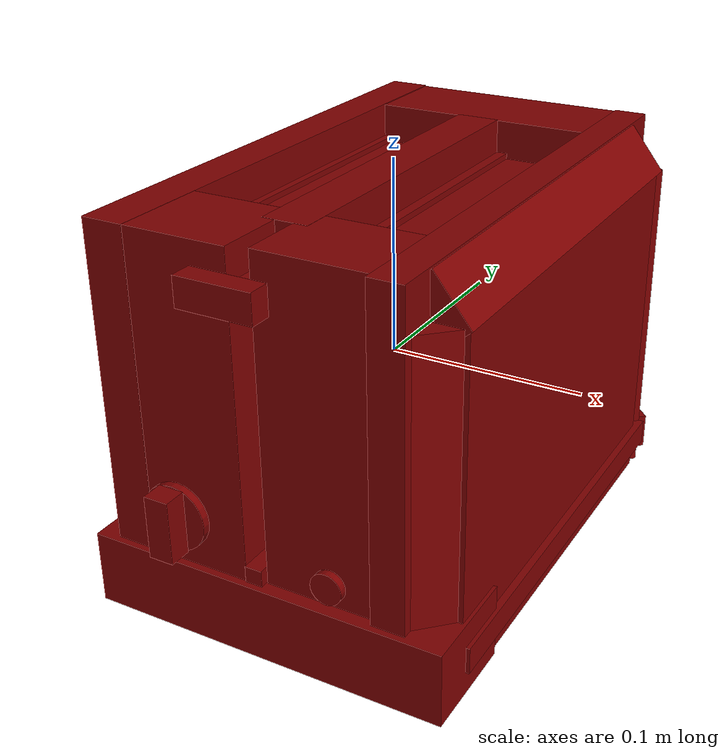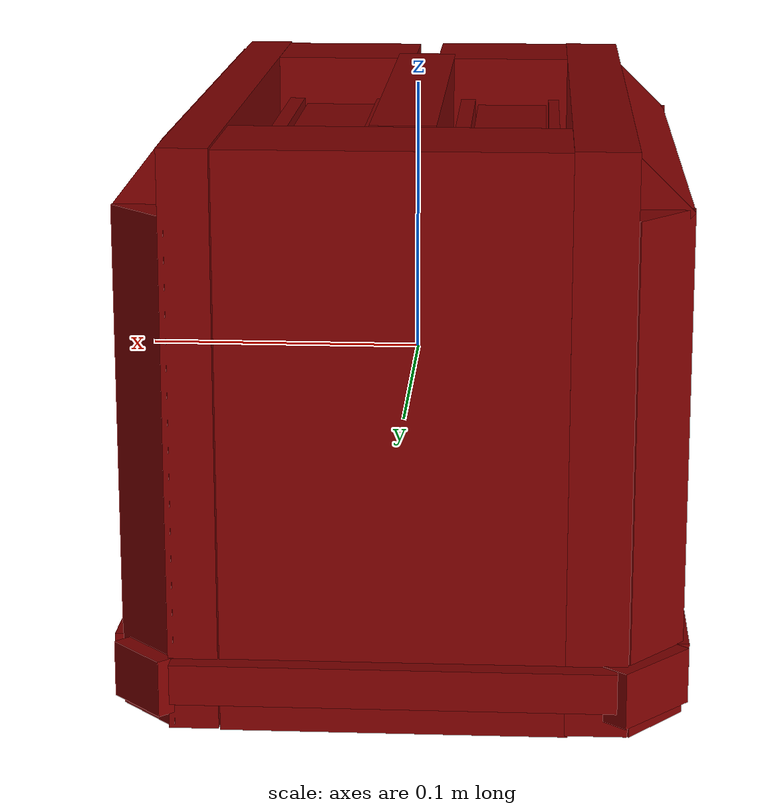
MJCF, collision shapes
<?xml version='1.0' encoding='UTF-8'?>
<mujoco model="model">
  <compiler angle="radian"/>
  <asset>
    <mesh file="visuals/Body001.obj" name="Body001_vis"/>
    <mesh file="visuals/Body002.obj" name="Body002_vis"/>
    <mesh file="visuals/Button001.obj" name="Button001_vis"/>
    <mesh file="visuals/Knob001.obj" name="Knob001_vis"/>
    <mesh file="visuals/Lever001.obj" name="Lever001_vis"/>
    <texture file="visuals/T_BC001.png" name="Body001_material" type="2d"/>
    <material name="Body001_material" rgba="1 1 1 1.0" texture="Body001_material" shininess="0.4472135901451111" specular="0.7"/>
    <texture file="visuals/T_BC001.png" name="Body002_material" type="2d"/>
    <material name="Body002_material" rgba="1 1 1 1.0" texture="Body002_material" shininess="0.4472135901451111" specular="0.7"/>
    <texture file="visuals/T_BC001.png" name="Button001_material" type="2d"/>
    <material name="Button001_material" rgba="1 1 1 1.0" texture="Button001_material" shininess="0.4472135901451111" specular="0.7"/>
    <texture file="visuals/T_BC001.png" name="Knob001_material" type="2d"/>
    <material name="Knob001_material" rgba="1 1 1 1.0" texture="Knob001_material" shininess="0.4472135901451111" specular="0.7"/>
    <texture file="visuals/T_BC001.png" name="Lever001_material" type="2d"/>
    <material name="Lever001_material" rgba="1 1 1 1.0" texture="Lever001_material" shininess="0.4472135901451111" specular="0.7"/>
  </asset>
  <default>
    <default class="visual">
      <geom conaffinity="0" contype="0" group="1" type="mesh"/>
    </default>
    <default class="collision">
      <geom group="0" rgba="0.5 0 0 0.5"/>
    </default>
    <default class="spawn">
      <geom group="0" rgba="1 1 1 0.5" contype="0" conaffinity="0"/>
      <site group="0" rgba="1 1 1 0.5"/>
    </default>
    <default class="region">
      <geom group="1" conaffinity="0" contype="0" rgba="0 1 0 0"/>
    </default>
  </default>
  <worldbody>
    <body>
      <body name="object">
        <geom mesh="Body001_vis" type="mesh" solimp="0.998 0.998 0.001" solref="0.001 1" density="100" friction="0.95 0.3 0.1" class="visual" material="Body001_material"/>
        <geom class="collision" type="box" pos="0.068138 0.004551 0.000201" size="0.008348358795046806 0.13344532251358032 0.09807537496089935" quat="1.0 0.0 0.0 0.0"/>
        <geom class="collision" type="box" pos="0.001020 -0.001908 0.000061" size="0.011282899416983128 0.09176366776227951 0.09820854663848877" quat="1.0 0.0 0.0 0.0"/>
        <geom class="collision" type="box" pos="0.001476 0.113644 -0.000253" size="0.057897262275218964 0.02387482486665249 0.09812276810407639" quat="1.0 0.0 0.0 0.0"/>
        <geom class="collision" type="box" pos="0.004189 -0.105335 -0.079438" size="0.0913849025964737 0.0267530158162117 0.018722539767622948" quat="1.0 0.0 0.0 0.0"/>
        <geom class="collision" type="box" pos="-0.065769 0.004551 0.000292" size="0.010383578017354012 0.13323767483234406 0.09801129996776581" quat="1.0 0.0 0.0 0.0"/>
        <geom class="collision" type="box" pos="-0.002098 0.006243 -0.082130" size="0.05969012528657913 0.09041440486907959 0.01581723429262638" quat="1.0 0.0 0.0 0.0"/>
        <geom class="collision" type="box" pos="-0.030094 -0.104027 0.017177" size="0.026154784485697746 0.024326661601662636 0.08100171387195587" quat="1.0 0.0 0.0 0.0"/>
        <geom class="collision" type="box" pos="0.032545 -0.102502 0.017967" size="0.027291320264339447 0.022801518440246582 0.08021790534257889" quat="1.0 0.0 0.0 0.0"/>
        <geom class="collision" type="box" pos="0.000333 -0.103784 -0.057431" size="0.004350475035607815 0.025201139971613884 0.004822122398763895" quat="1.0 0.0 0.0 0.0"/>
        <geom class="collision" type="box" pos="-0.084694 0.000367 -0.011033" size="0.00921536237001419 0.10965760052204132 0.08705183863639832" quat="1.0 0.0 0.0 0.0"/>
        <geom class="collision" type="box" pos="0.084392 0.000367 -0.010791" size="0.009439783170819283 0.10965762287378311 0.08680983632802963" quat="1.0 0.0 0.0 0.0"/>
        <geom class="collision" type="box" pos="-0.076690 0.117257 -0.011201" size="0.014619444496929646 0.012130013667047024 0.08721958100795746" quat="0.9034897089004517 0.0 0.0 0.42860978841781616"/>
        <geom class="collision" type="box" pos="0.076893 -0.112437 -0.010905" size="0.014619444496929646 0.00789739191532135 0.08692338317632675" quat="0.9259243011474609 0.0 0.0 0.37770912051200867"/>
        <geom class="collision" type="box" pos="-0.079726 -0.110723 -0.011034" size="0.014619444496929646 0.00789739191532135 0.08705200999975204" quat="0.37020304799079895 0.0 0.0 0.928950846195221"/>
        <geom class="collision" type="box" pos="0.079034 0.122015 -0.010889" size="0.014619444496929646 0.007897390983998775 0.08690701425075531" quat="0.39130401611328125 0.0 0.0 0.9202614426612854"/>
        <geom class="collision" type="box" pos="-0.092890 0.003423 -0.079349" size="0.004461574833840132 0.11271370947360992 0.00669081648811698" quat="1.0 0.0 0.0 0.0"/>
        <geom class="collision" type="box" pos="0.092868 0.004031 -0.079349" size="0.004627229180186987 0.11332177370786667 0.006690817419439554" quat="1.0 0.0 0.0 0.0"/>
        <geom class="collision" type="box" pos="0.001476 0.140558 -0.080060" size="0.07388576120138168 0.003776318160817027 0.0069085294380784035" quat="1.0 0.0 0.0 0.0"/>
        <geom class="collision" type="box" pos="0.082237 0.127885 -0.082571" size="0.012614376842975616 0.0078973937779665 0.009693946689367294" quat="0.39130401611328125 0.0 0.0 0.9202614426612854"/>
        <geom class="collision" type="box" pos="-0.080298 0.126756 -0.082571" size="0.016441063955426216 0.007897392846643925 0.009693946689367294" quat="0.4122016727924347 0.0 -0.0 -0.9110926389694214"/>
        <geom class="collision" type="box" pos="-0.079855 0.003423 0.081484" size="0.006238756701350212 0.11271379142999649 0.015457455068826675" quat="0.9224948287010193 3.011522147124422e-16 0.3860095143318176 5.186380036548144e-08"/>
        <geom class="collision" type="box" pos="0.081080 0.003423 0.082863" size="0.006238756701350212 0.11271379142999649 0.014129200018942356" quat="0.945044755935669 6.997293861005097e-15 -0.3269409239292145 -4.392740038383636e-08"/>
        <body name="Body002">
          <geom mesh="Body002_vis" type="mesh" solimp="0.998 0.998 0.001" solref="0.001 1" density="100" friction="0.95 0.3 0.1" class="visual" material="Body002_material"/>
          <geom class="collision" type="box" pos="-0.050086 0.004630 0.007062" size="0.002028566552326083 0.08008460700511932 0.07554154098033905" quat="1.0 0.0 0.0 0.0"/>
          <geom class="collision" type="box" pos="-0.016241 0.004630 0.007062" size="0.002852117642760277 0.08008510619401932 0.07554188370704651" quat="1.0 0.0 0.0 0.0"/>
          <geom class="collision" type="box" pos="0.017642 0.004630 0.007062" size="0.0026984047144651413 0.08008477836847305 0.07554186135530472" quat="1.0 0.0 0.0 0.0"/>
          <geom class="collision" type="box" pos="0.052164 0.004630 0.007062" size="0.002901066094636917 0.08008477836847305 0.07554154098033905" quat="1.0 0.0 0.0 0.0"/>
        </body>
        <body name="Button001">
          <joint axis="0.0 1.0 0.0" pos="0.040313 -0.130197 -0.046930" limited="true" name="Button001_joint" range="0.0 0.001" type="slide" damping="1" frictionloss="1" armature=".01" stiffness="0.05"/>
          <geom mesh="Button001_vis" type="mesh" solimp="0.998 0.998 0.001" solref="0.001 1" density="100" friction="0.95 0.3 0.1" class="visual" material="Button001_material"/>
          <geom class="collision" type="cylinder" pos="0.040367 -0.130872 -0.046940" size="0.007806489244103432 0.0018239460187032819" quat="0.7071067094802856 0.70710688829422 0.0 0.0"/>
        </body>
        <body name="Knob001">
          <joint axis="0.0 1.0 0.0" pos="-0.037787 -0.136904 -0.035596" limited="true" name="Knob001_joint" range="0.0 5.497787143782138" type="hinge" damping="0.05" armature="0.001"/>
          <geom mesh="Knob001_vis" type="mesh" solimp="0.998 0.998 0.001" solref="0.001 1" density="100" friction="0.95 0.3 0.1" class="visual" material="Knob001_material"/>
          <geom class="collision" type="cylinder" pos="-0.037668 -0.131675 -0.035256" size="0.016373874619603157 0.0019330427749082446" quat="0.7071067094802856 0.70710688829422 0.0 0.0"/>
          <geom class="collision" type="box" pos="-0.037750 -0.139205 -0.035577" size="0.006319499108940363 0.005593504291027784 0.01582489162683487" quat="1.0 0.0 0.0 0.0"/>
        </body>
        <body name="Lever001">
          <joint axis="0.0 0.0 -1.0" pos="0.000279 -0.122845 0.078272" limited="true" name="Lever001_joint" range="0.0 0.128" type="slide" damping="1" frictionloss="1" armature=".01" stiffness="1" springref="-1"/>
          <geom mesh="Lever001_vis" type="mesh" solimp="0.998 0.998 0.001" solref="0.001 1" density="100" friction="0.95 0.3 0.1" class="visual" material="Lever001_material"/>
          <geom class="collision" type="box" pos="-0.000003 -0.138094 0.081691" size="0.018643731251358986 0.005411902908235788 0.007104021031409502" quat="1.0 0.0 0.0 0.0" name="lever_knob"/>
          <geom class="collision" type="box" pos="0.000367 -0.118339 0.081673" size="0.002949710004031658 0.014109428972005844 0.0014008566504344344" quat="1.0 0.0 0.0 0.0"/>
          <geom class="collision" type="box" pos="-0.033588 0.003719 0.077434" size="0.013499999418854713 0.07910861819982529 0.0028953109867870808" quat="1.0 0.0 0.0 0.0" name="slotL_floor"/>
          <geom class="collision" type="box" pos="0.034799 0.003719 0.077434" size="0.013499999418854713 0.07910861819982529 0.0028953109867870808" quat="1.0 0.0 0.0 0.0" name="slotR_floor"/>
        </body>
        <geom class="region" name="reg_main" type="box" pos="0.0 0.006054500000000004 0.0" size="0.097575 0.13857049999999999 0.09847"/>
      </body>
    </body>
  </worldbody>
  <actuator>
    <motor name="Button001_joint_actuator" joint="Button001_joint" gear="0.5"/>
    <motor name="Knob001_joint_actuator" joint="Knob001_joint" gear="5"/>
    <motor name="Lever001_joint_actuator" joint="Lever001_joint" gear="0.5"/>
  </actuator>
</mujoco>
